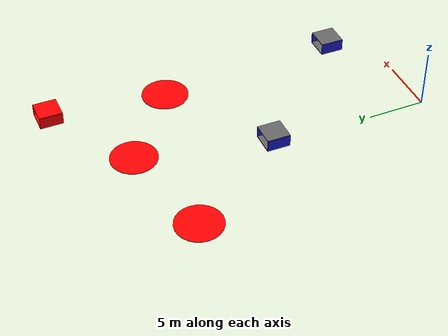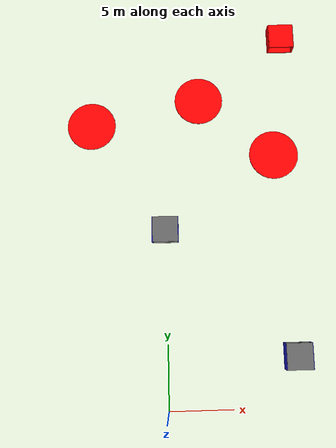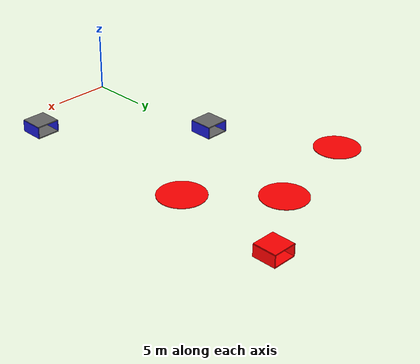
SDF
<sdf version="1.7">
 <world name="mars_yard_2">
  <physics name="1ms" type="ignored">
   <max_step_size>0.001</max_step_size>
   <real_time_factor>1.0</real_time_factor>
  </physics>
  <plugin filename="gz-sim-contact-system" name="gz::sim::systems::Contact"/>
  <plugin filename="gz-sim-imu-system" name="gz::sim::systems::Imu"/>
  <plugin filename="gz-sim-physics-system" name="gz::sim::systems::Physics"/>
  <plugin filename="gz-sim-scene-broadcaster-system" name="gz::sim::systems::SceneBroadcaster"/>
  <plugin filename="gz-sim-sensors-system" name="gz::sim::systems::Sensors"/>
  <plugin filename="gz-sim-user-commands-system" name="gz::sim::systems::UserCommands"/>
  <spherical_coordinates>
   <surface_model>EARTH_WGS84</surface_model>
   <world_frame_orientation>ENU</world_frame_orientation>
   <latitude_deg>50.088384</latitude_deg>
   <longitude_deg>19.939128</longitude_deg>
   <elevation>0</elevation>
   <heading_deg>0</heading_deg>
  </spherical_coordinates>
  <scene><ambient>0.3 0.3 0.3 1</ambient><background>0.6 0.7 0.9 1</background><shadows>true</shadows></scene>
  <light type="directional" name="sun">
   <pose>0 0 10 0 0 0</pose>
   <diffuse>1 1 0.9 1</diffuse>
   <specular>0.2 0.2 0.2 1</specular>
   <attenuation>
    <range>1000</range>
    <constant>0.9</constant>
    <linear>0.01</linear>
    <quadratic>0.001</quadratic>
   </attenuation>
   <direction>-0.5 0.5 -1</direction>
  </light>
  <include><uri>model://Reactor</uri><pose>10 4 0 0 0 3.14</pose></include>
  <include><uri>model://Airlock</uri><pose>0 14 0 0 0 3.14</pose></include>
  <include><uri>model://hazard_barrel1</uri><pose>9 20 0 0 0 0</pose></include>
  <include><uri>model://hazard_barrel2</uri><pose>-6 23 0 0 0 0</pose></include>
  <include><uri>model://hazard_barrel3</uri><pose>3 25 0 0 0 0</pose></include>
  <include><uri>model://Final</uri><pose>10 30 0 0 0 0</pose></include>
 </world>
</sdf>

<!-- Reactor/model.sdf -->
<sdf version="1.6">
  <model name="reactor">
    <static>false</static>

    <!-- Main body -->
    <link name="main_body">
      <pose>0 0 0.5 0 0 0</pose>
      <inertial>
        <mass>20.0</mass>
        <inertia>
          <ixx>1.0</ixx>
          <iyy>1.0</iyy>
          <izz>1.0</izz>
          <ixy>0.0</ixy>
          <ixz>0.0</ixz>
          <iyz>0.0</iyz>
        </inertia>
      </inertial>

      <!-- Floor -->
      <collision name="floor_collision">
        <geometry><box><size>2 2 0.1</size></box></geometry>
        <pose>0 0 0 0 0 0</pose>
      </collision>
      <visual name="floor_visual">
        <geometry><box><size>2 2 0.1</size></box></geometry>
        <pose>0 0 0 0 0 0</pose>
        <material>
          <diffuse>0.4 0.4 0.4 1</diffuse>
        </material>
      </visual>

      <!-- Top -->
      <collision name="top_collision">
        <geometry><box><size>2 2 0.1</size></box></geometry>
        <pose>0 0 1 0 0 0</pose>
      </collision>
      <visual name="top_visual">
        <geometry><box><size>2 2 0.1</size></box></geometry>
        <pose>0 0 1 0 0 0</pose>
        <material>
          <diffuse>0.4 0.4 0.4 1</diffuse>
        </material>
      </visual>

      <!-- Left Wall -->
      <collision name="left_wall_collision">
        <geometry><box><size>0.1 2 1</size></box></geometry>
        <pose>-1 0 0.5 0 0 0</pose>
      </collision>
      <visual name="left_wall_visual">
        <geometry><box><size>0.1 2 1</size></box></geometry>
        <pose>-1 0 0.5 0 0 0</pose>
        <material>
          <diffuse>0.1 0.1 0.8 1</diffuse>
        </material>
      </visual>

      <!-- Right Wall -->
      <collision name="right_wall_collision">
        <geometry><box><size>0.1 2 1</size></box></geometry>
        <pose>1 0 0.5 0 0 0</pose>
      </collision>
      <visual name="right_wall_visual">
        <geometry><box><size>0.1 2 1</size></box></geometry>
        <pose>1 0 0.5 0 0 0</pose>
        <material>
          <diffuse>0.1 0.1 0.8 1</diffuse>
        </material>
      </visual>
    </link>

  </model>
</sdf>

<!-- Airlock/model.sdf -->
<sdf version="1.6">
  <model name="airlock">
    <static>false</static>

    <!-- Main body -->
    <link name="main">
      <pose>0 0 0.5 0 0 0</pose>
      <inertial>
        <mass>20.0</mass>
        <inertia>
          <ixx>1.0</ixx>
          <iyy>1.0</iyy>
          <izz>1.0</izz>
          <ixy>0.0</ixy>
          <ixz>0.0</ixz>
          <iyz>0.0</iyz>
        </inertia>
      </inertial>

      <!-- Floor -->
      <collision name="floor_coll">
        <geometry><box><size>2 2 0.1</size></box></geometry>
        <pose>0 0 0 0 0 0</pose>
      </collision>
      <visual name="floor">
        <geometry><box><size>2 2 0.1</size></box></geometry>
        <pose>0 0 0 0 0 0</pose>
        <material>
          <diffuse>0.4 0.4 0.4 1</diffuse>
        </material>
      </visual>

      <!-- Top -->
      <collision name="top_coll">
        <geometry><box><size>2 2 0.1</size></box></geometry>
        <pose>0 0 1 0 0 0</pose>
      </collision>
      <visual name="top">
        <geometry><box><size>2 2 0.1</size></box></geometry>
        <pose>0 0 1 0 0 0</pose>
        <material>
          <diffuse>0.4 0.4 0.4 1</diffuse>
        </material>
      </visual>

      <!-- Left Wall -->
      <collision name="left_wall_coll">
        <geometry><box><size>0.1 2 1</size></box></geometry>
        <pose>-1 0 0.5 0 0 0</pose>
      </collision>
      <visual name="left_wall">
        <geometry><box><size>0.1 2 1</size></box></geometry>
        <pose>-1 0 0.5 0 0 0</pose>
        <material>
          <diffuse>0.1 0.1 0.8 1</diffuse>
        </material>
      </visual>

      <!-- Right Wall -->
      <collision name="right_wall_coll">
        <geometry><box><size>0.1 2 1</size></box></geometry>
        <pose>1 0 0.5 0 0 0</pose>
      </collision>
      <visual name="right_wall">
        <geometry><box><size>0.1 2 1</size></box></geometry>
        <pose>1 0 0.5 0 0 0</pose>
        <material>
          <diffuse>0.1 0.1 0.8 1</diffuse>
        </material>
      </visual>
    </link>

  </model>
</sdf>

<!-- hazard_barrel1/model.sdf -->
<sdf version="1.6">
  <model name="hazard_barrel1">
    <static>true</static>
    <link name="link">
      <pose>0 0 0.65 0 0 0</pose>

      <collision name="collision1">
        <geometry>
          <cylinder>
            <radius>2</radius>
            <length>0.05</length>
          </cylinder>
        </geometry>
      </collision>

      <visual name="visual1">
        <geometry>
          <cylinder>
            <radius>2</radius>
            <length>0.05</length>
          </cylinder>
        </geometry>
        <material>
          <ambient>1.0 0.0 0.0 1</ambient>
          <diffuse>1.0 0.0 0.0 1</diffuse>
          <specular>0.5 0.1 0.1 1</specular>
        </material>
      </visual>

    </link>
  </model>
</sdf>

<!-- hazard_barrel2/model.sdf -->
<sdf version="1.6">
  <model name="hazard_barrel2">
    <static>true</static>
    <link name="link">
      <pose>0 0 0.1 0 0 0</pose>

      <collision name="collision2">
        <geometry>
          <cylinder>
            <radius>2</radius>
            <length>0.05</length>
          </cylinder>
        </geometry>
      </collision>

      <visual name="visual2">
        <geometry>
          <cylinder>
            <radius>2</radius>
            <length>0.05</length>
          </cylinder>
        </geometry>
        <material>
          <ambient>1.0 0.0 0.0 1</ambient>
          <diffuse>1.0 0.0 0.0 1</diffuse>
          <specular>0.5 0.1 0.1 1</specular>
        </material>
      </visual>

    </link>
  </model>
</sdf>

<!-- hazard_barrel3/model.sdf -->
<sdf version="1.6">
  <model name="hazard_barrel3">
    <static>true</static>
    <link name="link">
      <pose>0 0 0.1 0 0 0</pose>

      <collision name="collision3">
        <geometry>
          <cylinder>
            <radius>2</radius>
            <length>0.05</length>
          </cylinder>
        </geometry>
      </collision>

      <visual name="visual3">
        <geometry>
          <cylinder>
            <radius>2</radius>
            <length>0.05</length>
          </cylinder>
        </geometry>
        <material>
          <ambient>1.0 0.0 0.0 1</ambient>
          <diffuse>1.0 0.0 0.0 1</diffuse>
          <specular>0.5 0.1 0.1 1</specular>
        </material>
      </visual>

    </link>
  </model>
</sdf>

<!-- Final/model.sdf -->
<sdf version="1.6">
  <model name="Final">
    <static>false</static>

    <!-- Main body -->
    <link name="main">
      <pose>0 0 0.5 0 0 0</pose>
      <inertial>
        <mass>20.0</mass>
        <inertia>
          <ixx>1.0</ixx>
          <iyy>1.0</iyy>
          <izz>1.0</izz>
          <ixy>0.0</ixy>
          <ixz>0.0</ixz>
          <iyz>0.0</iyz>
        </inertia>
      </inertial>

      <!-- Floor -->
      <collision name="floor_colli">
        <geometry><box><size>2 2 0.1</size></box></geometry>
        <pose>0 0 0 0 0 0</pose>
      </collision>
      <visual name="floor_">
        <geometry><box><size>2 2 0.1</size></box></geometry>
        <pose>0 0 0 0 0 0</pose>
        <material>
          <diffuse>1 0 0 1</diffuse>
        </material>
      </visual>

      <!-- Top -->
      <collision name="top_colli">
        <geometry><box><size>2 2 0.1</size></box></geometry>
        <pose>0 0 1 0 0 0</pose>
      </collision>
      <visual name="top_">
        <geometry><box><size>2 2 0.1</size></box></geometry>
        <pose>0 0 1 0 0 0</pose>
        <material>
          <diffuse>1 0 0 1</diffuse>
        </material>
      </visual>

      <!-- Left Wall -->
      <collision name="left_wall_colli">
        <geometry><box><size>0.1 2 1</size></box></geometry>
        <pose>-1 0 0.5 0 0 0</pose>
      </collision>
      <visual name="left_wall_">
        <geometry><box><size>0.1 2 1</size></box></geometry>
        <pose>-1 0 0.5 0 0 0</pose>
        <material>
          <diffuse>1 0 0 1</diffuse>
        </material>
      </visual>

      <!-- Right Wall -->
      <collision name="right_wall_colli">
        <geometry><box><size>0.1 2 1</size></box></geometry>
        <pose>1 0 0.5 0 0 0</pose>
      </collision>
      <visual name="right_wall_">
        <geometry><box><size>0.1 2 1</size></box></geometry>
        <pose>1 0 0.5 0 0 0</pose>
        <material>
          <diffuse>1 0 0 1</diffuse>
        </material>
      </visual>
    </link>

  </model>
</sdf>
